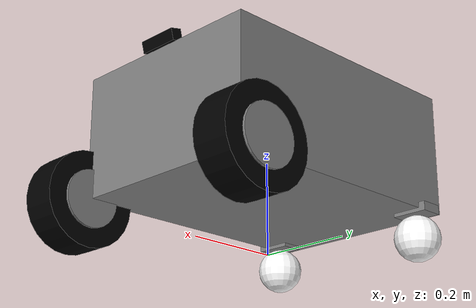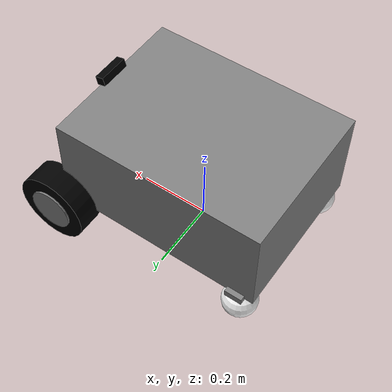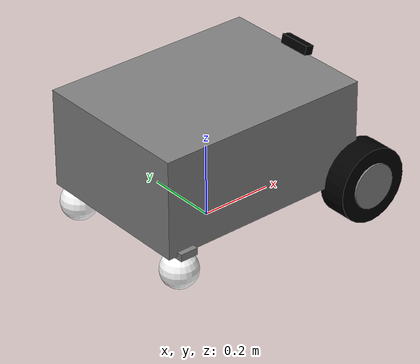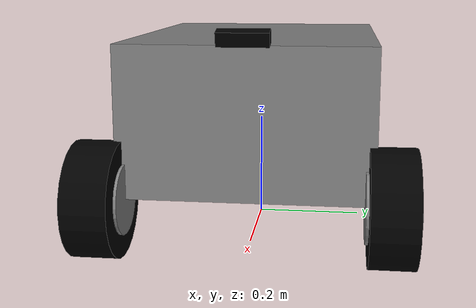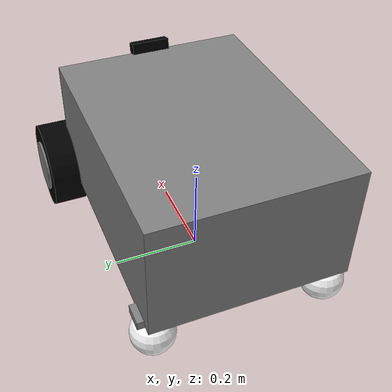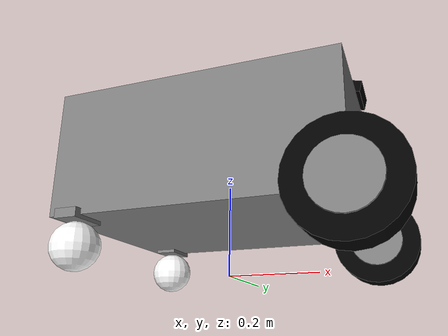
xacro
<?xml version="1.0"?>
<robot name="real_differential_robot" xmlns:xacro="http://www.ros.org/wiki/xacro">

  <material name="blue"><color rgba="0.0 0.0 0.8 1.0"/></material>
  <material name="black"><color rgba="0.0 0.0 0.0 1.0"/></material>
  <material name="white"><color rgba="1.0 1.0 1.0 1.0"/></material>
  <material name="green"><color rgba="0.0 0.8 0.0 1.0"/></material>
  <material name="red"><color rgba="0.8 0.0 0.0 1.0"/></material>
  <material name="gray"><color rgba="0.5 0.5 0.5 1.0"/></material>

  <xacro:property name="wheel_radius" value="0.103" />         <xacro:property name="wheel_width" value="0.08" />             <xacro:property name="wheel_base" value="0.503" />             <xacro:property name="base_width" value="0.45" />             <xacro:property name="base_length" value="0.60" />             <xacro:property name="base_height" value="0.27" />             <xacro:property name="wheel_forward_offset" value="0.30" /> <xacro:property name="base_ground_clearance" value="0.103" /> <xacro:property name="camera_height_offset" value="0.0125" /> <xacro:property name="camera_tilt_angle" value="0.25" />       <link name="world"/>

  <link name="base_link">
    <visual>
      <origin xyz="0 0 ${base_ground_clearance + base_height/2}" rpy="0 0 0"/>
      <geometry>
        <box size="${base_length} ${base_width} ${base_height}"/>
      </geometry>
      <material name="gray"/>
    </visual>
    <collision>
      <origin xyz="0 0 ${base_ground_clearance + base_height/2}" rpy="0 0 0"/>
      <geometry>
        <box size="${base_length} ${base_width} ${base_height}"/>
      </geometry>
    </collision>
  </link>

  <joint name="world_to_base_joint" type="fixed">
    <parent link="world"/>
    <child link="base_link"/>
    <origin xyz="0 0 0" rpy="0 0 0"/>
  </joint>

  <link name="left_wheel_link">
    <visual>
      <origin xyz="0 0 0" rpy="1.5708 0 0"/>
      <geometry>
        <cylinder radius="${wheel_radius}" length="${wheel_width}"/>
      </geometry>
      <material name="black"/>
    </visual>
    <visual>
      <origin xyz="0 0 0" rpy="1.5708 0 0"/>
      <geometry>
        <cylinder radius="${wheel_radius * 0.6}" length="${wheel_width + 0.01}"/>
      </geometry>
      <material name="gray"/>
    </visual>
    <collision>
      <origin xyz="0 0 0" rpy="1.5708 0 0"/>
      <geometry>
        <cylinder radius="${wheel_radius}" length="${wheel_width}"/>
      </geometry>
    </collision>
  </link>

  <joint name="left_wheel_joint" type="continuous">
    <parent link="base_link"/>
    <child link="left_wheel_link"/>
    <origin xyz="${wheel_forward_offset} ${wheel_base/2} ${wheel_radius}" rpy="0 0 0"/>
    <axis xyz="0 1 0"/>
    <dynamics damping="0.1" friction="0.1"/>
  </joint>

  <link name="right_wheel_link">
    <visual>
      <origin xyz="0 0 0" rpy="1.5708 0 0"/>
      <geometry>
        <cylinder radius="${wheel_radius}" length="${wheel_width}"/>
      </geometry>
      <material name="black"/>
    </visual>
    <visual>
      <origin xyz="0 0 0" rpy="1.5708 0 0"/>
      <geometry>
        <cylinder radius="${wheel_radius * 0.6}" length="${wheel_width + 0.01}"/>
      </geometry>
      <material name="gray"/>
    </visual>
    <collision>
      <origin xyz="0 0 0" rpy="1.5708 0 0"/>
      <geometry>
        <cylinder radius="${wheel_radius}" length="${wheel_width}"/>
      </geometry>
    </collision>
  </link>

  <joint name="right_wheel_joint" type="continuous">
    <parent link="base_link"/>
    <child link="right_wheel_link"/>
    <origin xyz="${wheel_forward_offset} ${-wheel_base/2} ${wheel_radius}" rpy="0 0 0"/>
    <axis xyz="0 1 0"/>
    <dynamics damping="0.1" friction="0.1"/>
  </joint>

  <link name="rear_left_caster_link">
    <visual>
      <origin xyz="0 0 0" rpy="0 0 0"/>
      <geometry>
        <sphere radius="0.05"/>
      </geometry>
      <material name="white"/>
    </visual>
    <visual>
      <origin xyz="0 0 0.06" rpy="0 0 0"/>
      <geometry>
        <box size="0.05 0.08 0.02"/>
      </geometry>
      <material name="gray"/>
    </visual>
    <collision>
      <origin xyz="0 0 0" rpy="0 0 0"/>
      <geometry>
        <sphere radius="0.05"/>
      </geometry>
    </collision>
  </link>

  <joint name="rear_left_caster_joint" type="fixed">
    <parent link="base_link"/>
    <child link="rear_left_caster_link"/>
    <origin xyz="-0.25 0.2 0.045" rpy="0 0 0"/>
  </joint>

  <link name="rear_right_caster_link">
    <visual>
      <origin xyz="0 0 0" rpy="0 0 0"/>
      <geometry>
        <sphere radius="0.05"/>
      </geometry>
      <material name="white"/>
    </visual>
    <visual>
      <origin xyz="0 0 0.06" rpy="0 0 0"/>
      <geometry>
        <box size="0.05 0.08 0.02"/>
      </geometry>
      <material name="gray"/>
    </visual>
    <collision>
      <origin xyz="0 0 0" rpy="0 0 0"/>
      <geometry>
        <sphere radius="0.05"/>
      </geometry>
    </collision>
  </link>

  <joint name="rear_right_caster_joint" type="fixed">
    <parent link="base_link"/>
    <child link="rear_right_caster_link"/>
    <origin xyz="-0.25 -0.2 0.045" rpy="0 0 0"/>
  </joint>

  <link name="camera_link">
    <visual>
      <origin xyz="0 0 0" rpy="0 0 0"/>
      <geometry>
        <box size="0.025 0.09 0.025"/>
      </geometry>
      <material name="black"/>
    </visual>
    <collision>
      <origin xyz="0 0 0" rpy="0 0 0"/>
      <geometry>
        <box size="0.025 0.09 0.025"/>
      </geometry>
    </collision>
  </link>

  <joint name="camera_joint" type="fixed">
    <parent link="base_link"/>
    <child link="camera_link"/>
    <origin xyz="${wheel_forward_offset} 0.0 ${base_ground_clearance + base_height + camera_height_offset}" rpy="0 ${camera_tilt_angle} 0"/>
  </joint>

  <link name="camera_color_frame"/>
  <joint name="camera_color_joint" type="fixed">
    <parent link="camera_link"/>
    <child link="camera_color_frame"/>
    <origin xyz="0 0 0" rpy="0 0 0"/>
  </joint>

  <link name="camera_color_optical_frame"/>
  <joint name="camera_color_optical_joint" type="fixed">
    <parent link="camera_color_frame"/>
    <child link="camera_color_optical_frame"/>
    <origin xyz="0 0 0" rpy="-1.5708 0 -1.5708"/>
     </joint>

</robot>
